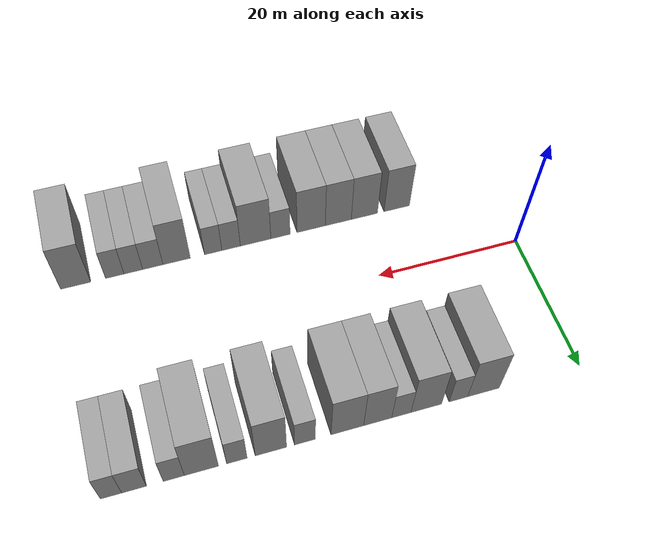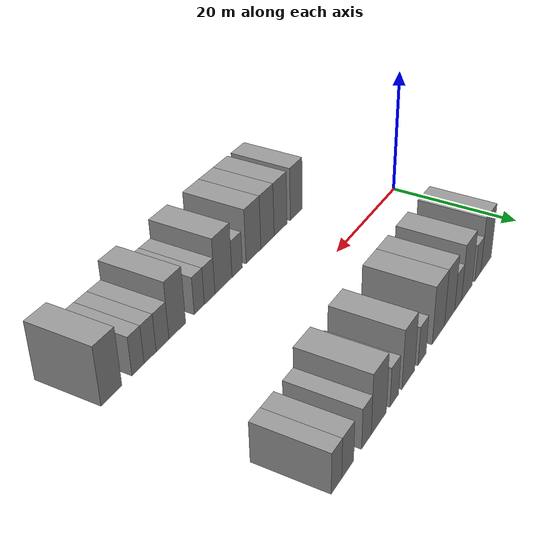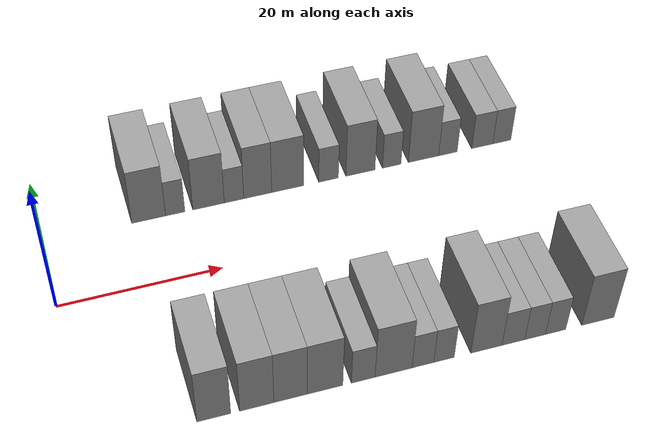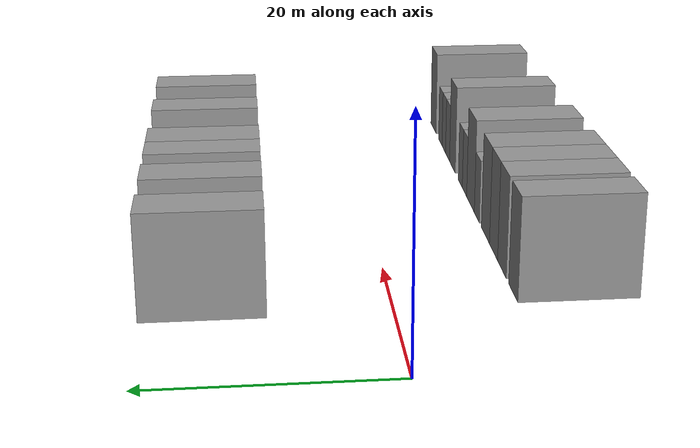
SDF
<sdf version="1.6">
 <world name="default">
  <model name="building_1">
   <static>1</static>
   <pose>13.1305 15.0000 0 0.000000 0.000000 1.570796</pose>
   <link name="link">
    <pose>0 0 4.50 0 0 0</pose>
    <collision name="collision"><geometry><box><size>10.0000 4.2610 9.0000</size></box></geometry></collision>
    <visual name="visual">
     <cast_shadows>0</cast_shadows>
     <geometry><box><size>10.0000 4.2610 9.0000</size></box></geometry>
     <material>
      <script>
       <uri>model://grey_wall/materials/scripts</uri>
       <uri>model://grey_wall/materials/textures</uri>
       <name>vrc/grey_wall</name>
      </script>
     </material>
    </visual>
   </link>
  </model>
  <model name="building_2">
   <static>1</static>
   <pose>16.4832 15.0000 0 0.000000 0.000000 1.570796</pose>
   <link name="link">
    <pose>0 0 3.00 0 0 0</pose>
    <collision name="collision"><geometry><box><size>10.0000 2.4443 6.0000</size></box></geometry></collision>
    <visual name="visual">
     <cast_shadows>0</cast_shadows>
     <geometry><box><size>10.0000 2.4443 6.0000</size></box></geometry>
     <material>
      <script>
       <uri>model://grey_wall/materials/scripts</uri>
       <uri>model://grey_wall/materials/textures</uri>
       <name>vrc/grey_wall</name>
      </script>
     </material>
    </visual>
   </link>
  </model>
  <model name="building_3">
   <static>1</static>
   <pose>20.7164 15.0000 0 0.000000 0.000000 1.570796</pose>
   <link name="link">
    <pose>0 0 4.50 0 0 0</pose>
    <collision name="collision"><geometry><box><size>10.0000 4.0220 9.0000</size></box></geometry></collision>
    <visual name="visual">
     <cast_shadows>0</cast_shadows>
     <geometry><box><size>10.0000 4.0220 9.0000</size></box></geometry>
     <material>
      <script>
       <uri>model://grey_wall/materials/scripts</uri>
       <uri>model://grey_wall/materials/textures</uri>
       <name>vrc/grey_wall</name>
      </script>
     </material>
    </visual>
   </link>
  </model>
  <model name="building_4">
   <static>1</static>
   <pose>23.9780 15.0000 0 0.000000 0.000000 1.570796</pose>
   <link name="link">
    <pose>0 0 3.00 0 0 0</pose>
    <collision name="collision"><geometry><box><size>10.0000 2.5012 6.0000</size></box></geometry></collision>
    <visual name="visual">
     <cast_shadows>0</cast_shadows>
     <geometry><box><size>10.0000 2.5012 6.0000</size></box></geometry>
     <material>
      <script>
       <uri>model://grey_wall/materials/scripts</uri>
       <uri>model://grey_wall/materials/textures</uri>
       <name>vrc/grey_wall</name>
      </script>
     </material>
    </visual>
   </link>
  </model>
  <model name="building_5">
   <static>1</static>
   <pose>27.0393 15.0000 0 0.000000 0.000000 1.570796</pose>
   <link name="link">
    <pose>0 0 4.50 0 0 0</pose>
    <collision name="collision"><geometry><box><size>10.0000 3.6214 9.0000</size></box></geometry></collision>
    <visual name="visual">
     <cast_shadows>0</cast_shadows>
     <geometry><box><size>10.0000 3.6214 9.0000</size></box></geometry>
     <material>
      <script>
       <uri>model://grey_wall/materials/scripts</uri>
       <uri>model://grey_wall/materials/textures</uri>
       <name>vrc/grey_wall</name>
      </script>
     </material>
    </visual>
   </link>
  </model>
  <model name="building_6">
   <static>1</static>
   <pose>30.9318 15.0000 0 0.000000 0.000000 1.570796</pose>
   <link name="link">
    <pose>0 0 4.50 0 0 0</pose>
    <collision name="collision"><geometry><box><size>10.0000 4.1634 9.0000</size></box></geometry></collision>
    <visual name="visual">
     <cast_shadows>0</cast_shadows>
     <geometry><box><size>10.0000 4.1634 9.0000</size></box></geometry>
     <material>
      <script>
       <uri>model://grey_wall/materials/scripts</uri>
       <uri>model://grey_wall/materials/textures</uri>
       <name>vrc/grey_wall</name>
      </script>
     </material>
    </visual>
   </link>
  </model>
  <model name="building_7">
   <static>1</static>
   <pose>36.3098 15.0000 0 0.000000 0.000000 1.570796</pose>
   <link name="link">
    <pose>0 0 3.00 0 0 0</pose>
    <collision name="collision"><geometry><box><size>10.0000 2.5927 6.0000</size></box></geometry></collision>
    <visual name="visual">
     <cast_shadows>0</cast_shadows>
     <geometry><box><size>10.0000 2.5927 6.0000</size></box></geometry>
     <material>
      <script>
       <uri>model://grey_wall/materials/scripts</uri>
       <uri>model://grey_wall/materials/textures</uri>
       <name>vrc/grey_wall</name>
      </script>
     </material>
    </visual>
   </link>
  </model>
  <model name="building_8">
   <static>1</static>
   <pose>40.5476 15.0000 0 0.000000 0.000000 1.570796</pose>
   <link name="link">
    <pose>0 0 4.50 0 0 0</pose>
    <collision name="collision"><geometry><box><size>10.0000 3.8829 9.0000</size></box></geometry></collision>
    <visual name="visual">
     <cast_shadows>0</cast_shadows>
     <geometry><box><size>10.0000 3.8829 9.0000</size></box></geometry>
     <material>
      <script>
       <uri>model://grey_wall/materials/scripts</uri>
       <uri>model://grey_wall/materials/textures</uri>
       <name>vrc/grey_wall</name>
      </script>
     </material>
    </visual>
   </link>
  </model>
  <model name="building_9">
   <static>1</static>
   <pose>44.7395 15.0000 0 0.000000 0.000000 1.570796</pose>
   <link name="link">
    <pose>0 0 3.00 0 0 0</pose>
    <collision name="collision"><geometry><box><size>10.0000 2.5008 6.0000</size></box></geometry></collision>
    <visual name="visual">
     <cast_shadows>0</cast_shadows>
     <geometry><box><size>10.0000 2.5008 6.0000</size></box></geometry>
     <material>
      <script>
       <uri>model://grey_wall/materials/scripts</uri>
       <uri>model://grey_wall/materials/textures</uri>
       <name>vrc/grey_wall</name>
      </script>
     </material>
    </visual>
   </link>
  </model>
  <model name="building_10">
   <static>1</static>
   <pose>49.0521 15.0000 0 0.000000 0.000000 1.570796</pose>
   <link name="link">
    <pose>0 0 4.50 0 0 0</pose>
    <collision name="collision"><geometry><box><size>10.0000 4.1243 9.0000</size></box></geometry></collision>
    <visual name="visual">
     <cast_shadows>0</cast_shadows>
     <geometry><box><size>10.0000 4.1243 9.0000</size></box></geometry>
     <material>
      <script>
       <uri>model://grey_wall/materials/scripts</uri>
       <uri>model://grey_wall/materials/textures</uri>
       <name>vrc/grey_wall</name>
      </script>
     </material>
    </visual>
   </link>
  </model>
  <model name="building_11">
   <static>1</static>
   <pose>52.3806 15.0000 0 0.000000 0.000000 1.570796</pose>
   <link name="link">
    <pose>0 0 3.00 0 0 0</pose>
    <collision name="collision"><geometry><box><size>10.0000 2.5327 6.0000</size></box></geometry></collision>
    <visual name="visual">
     <cast_shadows>0</cast_shadows>
     <geometry><box><size>10.0000 2.5327 6.0000</size></box></geometry>
     <material>
      <script>
       <uri>model://grey_wall/materials/scripts</uri>
       <uri>model://grey_wall/materials/textures</uri>
       <name>vrc/grey_wall</name>
      </script>
     </material>
    </visual>
   </link>
  </model>
  <model name="building_12">
   <static>1</static>
   <pose>57.1099 15.0000 0 0.000000 0.000000 1.570796</pose>
   <link name="link">
    <pose>0 0 3.00 0 0 0</pose>
    <collision name="collision"><geometry><box><size>10.0000 2.9259 6.0000</size></box></geometry></collision>
    <visual name="visual">
     <cast_shadows>0</cast_shadows>
     <geometry><box><size>10.0000 2.9259 6.0000</size></box></geometry>
     <material>
      <script>
       <uri>model://grey_wall/materials/scripts</uri>
       <uri>model://grey_wall/materials/textures</uri>
       <name>vrc/grey_wall</name>
      </script>
     </material>
    </visual>
   </link>
  </model>
  <model name="building_13">
   <static>1</static>
   <pose>59.8237 15.0000 0 0.000000 0.000000 1.570796</pose>
   <link name="link">
    <pose>0 0 3.00 0 0 0</pose>
    <collision name="collision"><geometry><box><size>10.0000 2.5016 6.0000</size></box></geometry></collision>
    <visual name="visual">
     <cast_shadows>0</cast_shadows>
     <geometry><box><size>10.0000 2.5016 6.0000</size></box></geometry>
     <material>
      <script>
       <uri>model://grey_wall/materials/scripts</uri>
       <uri>model://grey_wall/materials/textures</uri>
       <name>vrc/grey_wall</name>
      </script>
     </material>
    </visual>
   </link>
  </model>
  <model name="building_52">
   <static>1</static>
   <pose>13.9039 -15.0000 0 0.000000 0.000000 1.570796</pose>
   <link name="link">
    <pose>0 0 4.50 0 0 0</pose>
    <collision name="collision"><geometry><box><size>10.0000 3.8078 9.0000</size></box></geometry></collision>
    <visual name="visual">
     <cast_shadows>0</cast_shadows>
     <geometry><box><size>10.0000 3.8078 9.0000</size></box></geometry>
     <material>
      <script>
       <uri>model://grey_wall/materials/scripts</uri>
       <uri>model://grey_wall/materials/textures</uri>
       <name>vrc/grey_wall</name>
      </script>
     </material>
    </visual>
   </link>
  </model>
  <model name="building_53">
   <static>1</static>
   <pose>18.7515 -15.0000 0 0.000000 0.000000 1.570796</pose>
   <link name="link">
    <pose>0 0 4.50 0 0 0</pose>
    <collision name="collision"><geometry><box><size>10.0000 3.8874 9.0000</size></box></geometry></collision>
    <visual name="visual">
     <cast_shadows>0</cast_shadows>
     <geometry><box><size>10.0000 3.8874 9.0000</size></box></geometry>
     <material>
      <script>
       <uri>model://grey_wall/materials/scripts</uri>
       <uri>model://grey_wall/materials/textures</uri>
       <name>vrc/grey_wall</name>
      </script>
     </material>
    </visual>
   </link>
  </model>
  <model name="building_54">
   <static>1</static>
   <pose>22.6195 -15.0000 0 0.000000 0.000000 1.570796</pose>
   <link name="link">
    <pose>0 0 4.50 0 0 0</pose>
    <collision name="collision"><geometry><box><size>10.0000 3.8486 9.0000</size></box></geometry></collision>
    <visual name="visual">
     <cast_shadows>0</cast_shadows>
     <geometry><box><size>10.0000 3.8486 9.0000</size></box></geometry>
     <material>
      <script>
       <uri>model://grey_wall/materials/scripts</uri>
       <uri>model://grey_wall/materials/textures</uri>
       <name>vrc/grey_wall</name>
      </script>
     </material>
    </visual>
   </link>
  </model>
  <model name="building_55">
   <static>1</static>
   <pose>26.6039 -15.0000 0 0.000000 0.000000 1.570796</pose>
   <link name="link">
    <pose>0 0 4.50 0 0 0</pose>
    <collision name="collision"><geometry><box><size>10.0000 4.1202 9.0000</size></box></geometry></collision>
    <visual name="visual">
     <cast_shadows>0</cast_shadows>
     <geometry><box><size>10.0000 4.1202 9.0000</size></box></geometry>
     <material>
      <script>
       <uri>model://grey_wall/materials/scripts</uri>
       <uri>model://grey_wall/materials/textures</uri>
       <name>vrc/grey_wall</name>
      </script>
     </material>
    </visual>
   </link>
  </model>
  <model name="building_56">
   <static>1</static>
   <pose>31.0491 -15.0000 0 0.000000 0.000000 1.570796</pose>
   <link name="link">
    <pose>0 0 3.00 0 0 0</pose>
    <collision name="collision"><geometry><box><size>10.0000 2.7703 6.0000</size></box></geometry></collision>
    <visual name="visual">
     <cast_shadows>0</cast_shadows>
     <geometry><box><size>10.0000 2.7703 6.0000</size></box></geometry>
     <material>
      <script>
       <uri>model://grey_wall/materials/scripts</uri>
       <uri>model://grey_wall/materials/textures</uri>
       <name>vrc/grey_wall</name>
      </script>
     </material>
    </visual>
   </link>
  </model>
  <model name="building_57">
   <static>1</static>
   <pose>34.6202 -15.0000 0 0.000000 0.000000 1.570796</pose>
   <link name="link">
    <pose>0 0 4.50 0 0 0</pose>
    <collision name="collision"><geometry><box><size>10.0000 4.3719 9.0000</size></box></geometry></collision>
    <visual name="visual">
     <cast_shadows>0</cast_shadows>
     <geometry><box><size>10.0000 4.3719 9.0000</size></box></geometry>
     <material>
      <script>
       <uri>model://grey_wall/materials/scripts</uri>
       <uri>model://grey_wall/materials/textures</uri>
       <name>vrc/grey_wall</name>
      </script>
     </material>
    </visual>
   </link>
  </model>
  <model name="building_58">
   <static>1</static>
   <pose>38.1164 -15.0000 0 0.000000 0.000000 1.570796</pose>
   <link name="link">
    <pose>0 0 3.00 0 0 0</pose>
    <collision name="collision"><geometry><box><size>10.0000 2.6204 6.0000</size></box></geometry></collision>
    <visual name="visual">
     <cast_shadows>0</cast_shadows>
     <geometry><box><size>10.0000 2.6204 6.0000</size></box></geometry>
     <material>
      <script>
       <uri>model://grey_wall/materials/scripts</uri>
       <uri>model://grey_wall/materials/textures</uri>
       <name>vrc/grey_wall</name>
      </script>
     </material>
    </visual>
   </link>
  </model>
  <model name="building_59">
   <static>1</static>
   <pose>40.6482 -15.0000 0 0.000000 0.000000 1.570796</pose>
   <link name="link">
    <pose>0 0 3.00 0 0 0</pose>
    <collision name="collision"><geometry><box><size>10.0000 2.4431 6.0000</size></box></geometry></collision>
    <visual name="visual">
     <cast_shadows>0</cast_shadows>
     <geometry><box><size>10.0000 2.4431 6.0000</size></box></geometry>
     <material>
      <script>
       <uri>model://grey_wall/materials/scripts</uri>
       <uri>model://grey_wall/materials/textures</uri>
       <name>vrc/grey_wall</name>
      </script>
     </material>
    </visual>
   </link>
  </model>
  <model name="building_60">
   <static>1</static>
   <pose>45.7719 -15.0000 0 0.000000 0.000000 1.570796</pose>
   <link name="link">
    <pose>0 0 4.50 0 0 0</pose>
    <collision name="collision"><geometry><box><size>10.0000 3.8043 9.0000</size></box></geometry></collision>
    <visual name="visual">
     <cast_shadows>0</cast_shadows>
     <geometry><box><size>10.0000 3.8043 9.0000</size></box></geometry>
     <material>
      <script>
       <uri>model://grey_wall/materials/scripts</uri>
       <uri>model://grey_wall/materials/textures</uri>
       <name>vrc/grey_wall</name>
      </script>
     </material>
    </visual>
   </link>
  </model>
  <model name="building_61">
   <static>1</static>
   <pose>49.0729 -15.0000 0 0.000000 0.000000 1.570796</pose>
   <link name="link">
    <pose>0 0 3.00 0 0 0</pose>
    <collision name="collision"><geometry><box><size>10.0000 2.7978 6.0000</size></box></geometry></collision>
    <visual name="visual">
     <cast_shadows>0</cast_shadows>
     <geometry><box><size>10.0000 2.7978 6.0000</size></box></geometry>
     <material>
      <script>
       <uri>model://grey_wall/materials/scripts</uri>
       <uri>model://grey_wall/materials/textures</uri>
       <name>vrc/grey_wall</name>
      </script>
     </material>
    </visual>
   </link>
  </model>
  <model name="building_62">
   <static>1</static>
   <pose>51.7469 -15.0000 0 0.000000 0.000000 1.570796</pose>
   <link name="link">
    <pose>0 0 3.00 0 0 0</pose>
    <collision name="collision"><geometry><box><size>10.0000 2.5502 6.0000</size></box></geometry></collision>
    <visual name="visual">
     <cast_shadows>0</cast_shadows>
     <geometry><box><size>10.0000 2.5502 6.0000</size></box></geometry>
     <material>
      <script>
       <uri>model://grey_wall/materials/scripts</uri>
       <uri>model://grey_wall/materials/textures</uri>
       <name>vrc/grey_wall</name>
      </script>
     </material>
    </visual>
   </link>
  </model>
  <model name="building_63">
   <static>1</static>
   <pose>54.2846 -15.0000 0 0.000000 0.000000 1.570796</pose>
   <link name="link">
    <pose>0 0 3.00 0 0 0</pose>
    <collision name="collision"><geometry><box><size>10.0000 2.5253 6.0000</size></box></geometry></collision>
    <visual name="visual">
     <cast_shadows>0</cast_shadows>
     <geometry><box><size>10.0000 2.5253 6.0000</size></box></geometry>
     <material>
      <script>
       <uri>model://grey_wall/materials/scripts</uri>
       <uri>model://grey_wall/materials/textures</uri>
       <name>vrc/grey_wall</name>
      </script>
     </material>
    </visual>
   </link>
  </model>
  <model name="building_64">
   <static>1</static>
   <pose>59.5753 -15.0000 0 0.000000 0.000000 1.570796</pose>
   <link name="link">
    <pose>0 0 4.50 0 0 0</pose>
    <collision name="collision"><geometry><box><size>10.0000 4.0559 9.0000</size></box></geometry></collision>
    <visual name="visual">
     <cast_shadows>0</cast_shadows>
     <geometry><box><size>10.0000 4.0559 9.0000</size></box></geometry>
     <material>
      <script>
       <uri>model://grey_wall/materials/scripts</uri>
       <uri>model://grey_wall/materials/textures</uri>
       <name>vrc/grey_wall</name>
      </script>
     </material>
    </visual>
   </link>
  </model>
 </world>
</sdf>
